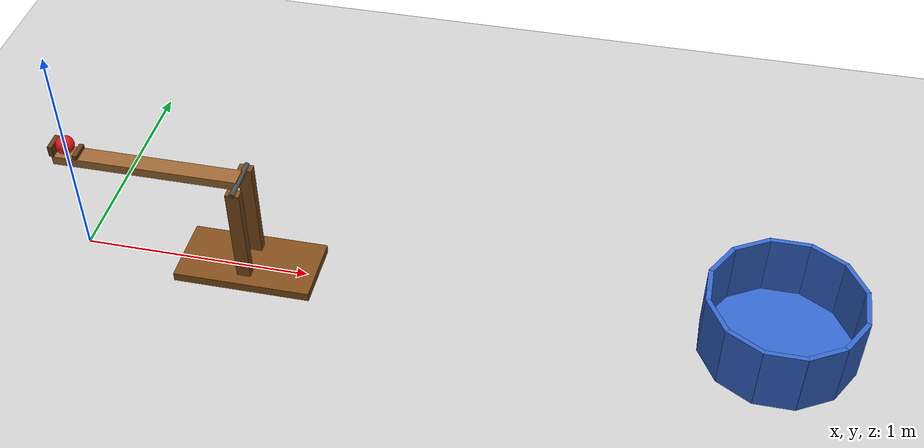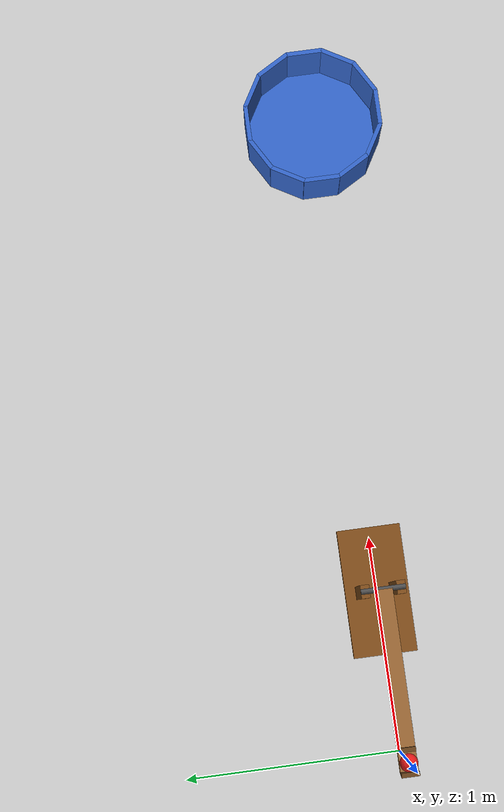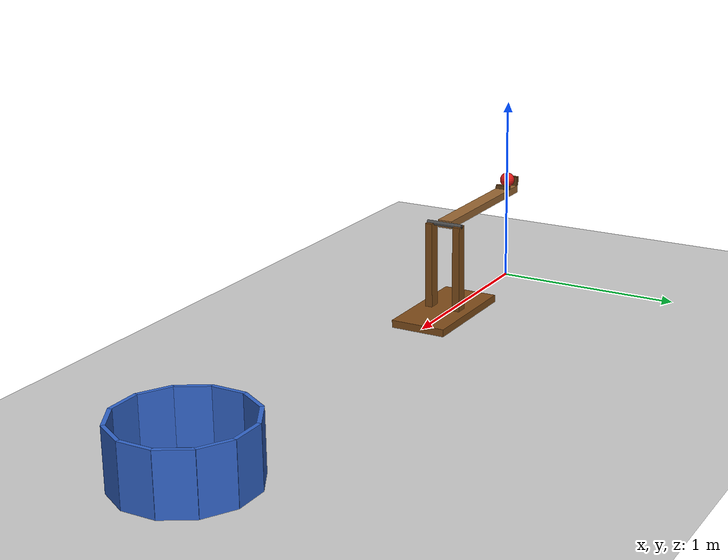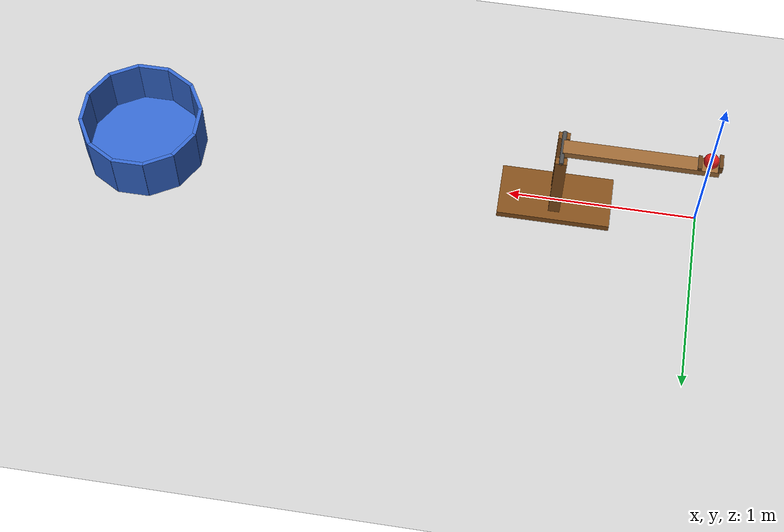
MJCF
<mujoco model="catapult_bucket">
  <compiler angle="radian"/>
  <option timestep="0.002" integrator="implicitfast" gravity="0 0 -9.81"/>

  <worldbody>
    <light name="sun" pos="1.5 -2 5" dir="0 0.3 -1" directional="true"/>
    <geom name="floor" type="plane" size="10 10 0.1" rgba="0.8 0.8 0.8 1"/>

    <!-- static catapult frame (visual only, no collisions) -->
    <geom name="catapult_base" type="box" pos="0.75 0 0.02" size="0.3 0.15 0.02" contype="0" conaffinity="0" rgba="0.5 0.3 0.1 1"/>
    <geom name="catapult_post_left" type="box" pos="0.75 0.08 0.26" size="0.03 0.02 0.24" contype="0" conaffinity="0" rgba="0.5 0.3 0.1 1"/>
    <geom name="catapult_post_right" type="box" pos="0.75 -0.08 0.26" size="0.03 0.02 0.24" contype="0" conaffinity="0" rgba="0.5 0.3 0.1 1"/>
    <geom name="catapult_axle" type="cylinder" fromto="0.75 -0.1 0.5 0.75 0.1 0.5" size="0.012" contype="0" conaffinity="0" rgba="0.3 0.3 0.3 1"/>

    <!-- throwing arm: pivot at (0.75, 0, 0.5), points along -x at q = 0, swings up about +y.
         Its geoms touch the ball only through the frictionless contact pairs below. -->
    <body name="catapult_arm" pos="0.75 0 0.5">
      <joint name="catapult_hinge" type="hinge" axis="0 1 0" limited="true" range="0 0.705569" solreflimit="0.005 1"/>
      <geom name="catapult_beam" type="box" pos="-0.4 0 0" size="0.4 0.04 0.02" mass="0.5" contype="0" conaffinity="0" rgba="0.6 0.4 0.2 1"/>
      <geom name="catapult_lip_outer" type="box" pos="-0.8 0 0.045" size="0.01 0.04 0.025" mass="0.05" contype="0" conaffinity="0" rgba="0.4 0.25 0.1 1"/>
      <geom name="catapult_lip_inner" type="box" pos="-0.697 0 0.03" size="0.01 0.04 0.01" mass="0.05" contype="0" conaffinity="0" rgba="0.4 0.25 0.1 1"/>
    </body>

    <!-- ball resting in the cup, touching the arm surface and the outer lip -->
    <body name="ball" pos="0 0 0.56">
      <freejoint/>
      <geom name="ball" type="sphere" size="0.04" mass="0.1" solref="0.005 1" rgba="0.9 0.1 0.1 1"/>
    </body>

    <!-- bucket centred 3 m (horizontally) from the ball start, inner radius 0.30, rim at z = 0.3 -->
    <body name="bucket" pos="3 0 0">
      <geom name="bucket_bottom" type="cylinder" pos="0 0 0.01" size="0.32 0.01" rgba="0.2 0.4 0.8 1"/>
      <geom name="bucket_wall_00" type="box" pos="0.31 0 0.15" euler="0 0 0" size="0.01 0.085 0.15" rgba="0.2 0.4 0.8 1"/>
      <geom name="bucket_wall_01" type="box" pos="0.26847 0.155 0.15" euler="0 0 0.5236" size="0.01 0.085 0.15" rgba="0.2 0.4 0.8 1"/>
      <geom name="bucket_wall_02" type="box" pos="0.155 0.26847 0.15" euler="0 0 1.0472" size="0.01 0.085 0.15" rgba="0.2 0.4 0.8 1"/>
      <geom name="bucket_wall_03" type="box" pos="0 0.31 0.15" euler="0 0 1.5708" size="0.01 0.085 0.15" rgba="0.2 0.4 0.8 1"/>
      <geom name="bucket_wall_04" type="box" pos="-0.155 0.26847 0.15" euler="0 0 2.0944" size="0.01 0.085 0.15" rgba="0.2 0.4 0.8 1"/>
      <geom name="bucket_wall_05" type="box" pos="-0.26847 0.155 0.15" euler="0 0 2.6180" size="0.01 0.085 0.15" rgba="0.2 0.4 0.8 1"/>
      <geom name="bucket_wall_06" type="box" pos="-0.31 0 0.15" euler="0 0 3.1416" size="0.01 0.085 0.15" rgba="0.2 0.4 0.8 1"/>
      <geom name="bucket_wall_07" type="box" pos="-0.26847 -0.155 0.15" euler="0 0 3.6652" size="0.01 0.085 0.15" rgba="0.2 0.4 0.8 1"/>
      <geom name="bucket_wall_08" type="box" pos="-0.155 -0.26847 0.15" euler="0 0 4.1888" size="0.01 0.085 0.15" rgba="0.2 0.4 0.8 1"/>
      <geom name="bucket_wall_09" type="box" pos="0 -0.31 0.15" euler="0 0 4.7124" size="0.01 0.085 0.15" rgba="0.2 0.4 0.8 1"/>
      <geom name="bucket_wall_10" type="box" pos="0.155 -0.26847 0.15" euler="0 0 5.2360" size="0.01 0.085 0.15" rgba="0.2 0.4 0.8 1"/>
      <geom name="bucket_wall_11" type="box" pos="0.26847 -0.155 0.15" euler="0 0 5.7596" size="0.01 0.085 0.15" rgba="0.2 0.4 0.8 1"/>
    </body>
  </worldbody>

  <contact>
    <pair name="catapult_pair_beam" geom1="ball" geom2="catapult_beam" condim="1" solref="0.005 1"/>
    <pair name="catapult_pair_lip_outer" geom1="ball" geom2="catapult_lip_outer" condim="1" solref="0.005 1"/>
    <pair name="catapult_pair_lip_inner" geom1="ball" geom2="catapult_lip_inner" condim="1" solref="0.005 1"/>
  </contact>

  <actuator>
    <motor name="catapult_motor" joint="catapult_hinge" gear="1" ctrllimited="true" ctrlrange="0 20"/>
  </actuator>

  <keyframe>
    <key name="start" ctrl="9.12"/>
  </keyframe>
</mujoco>
